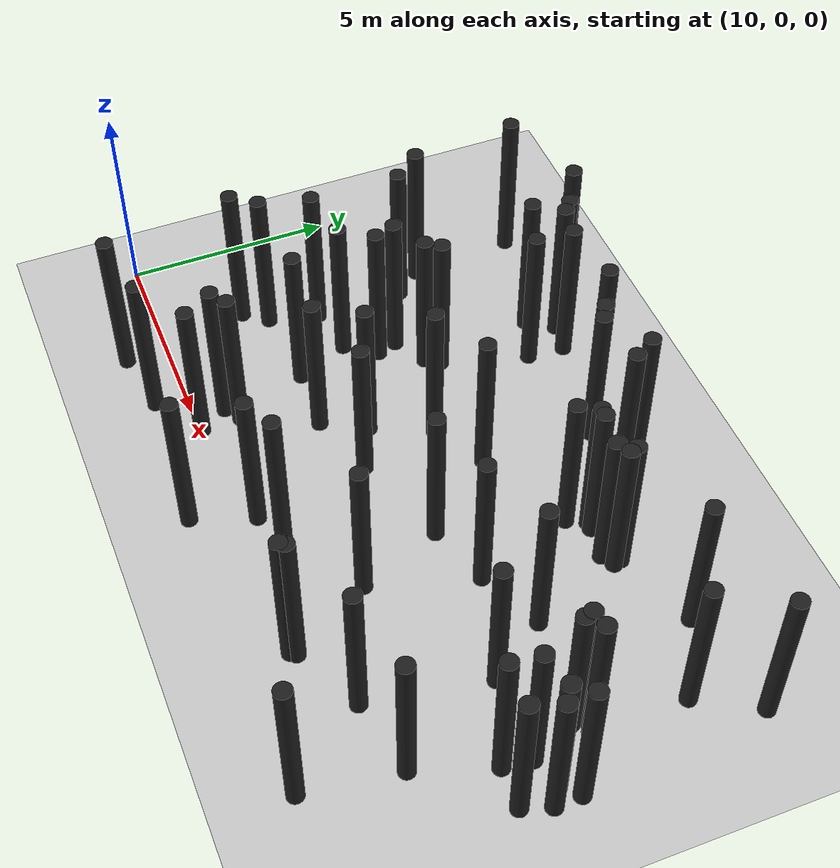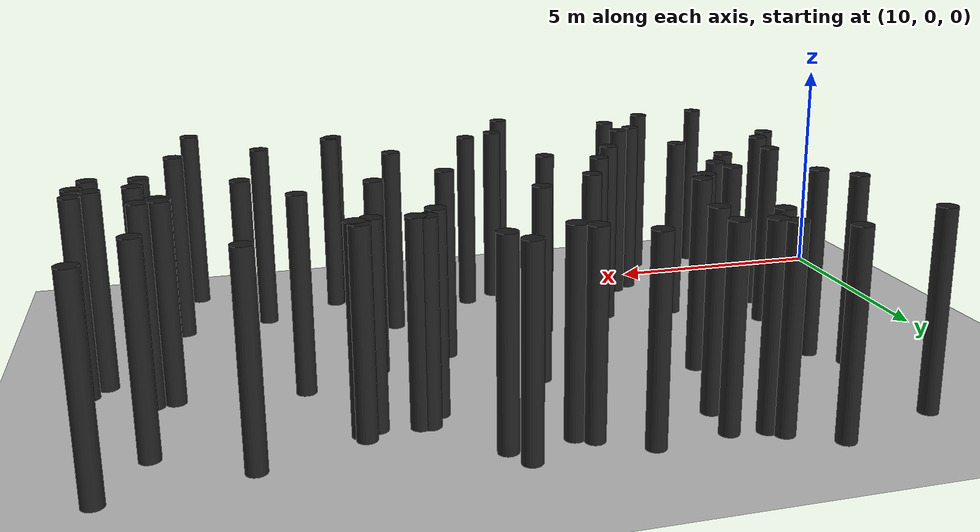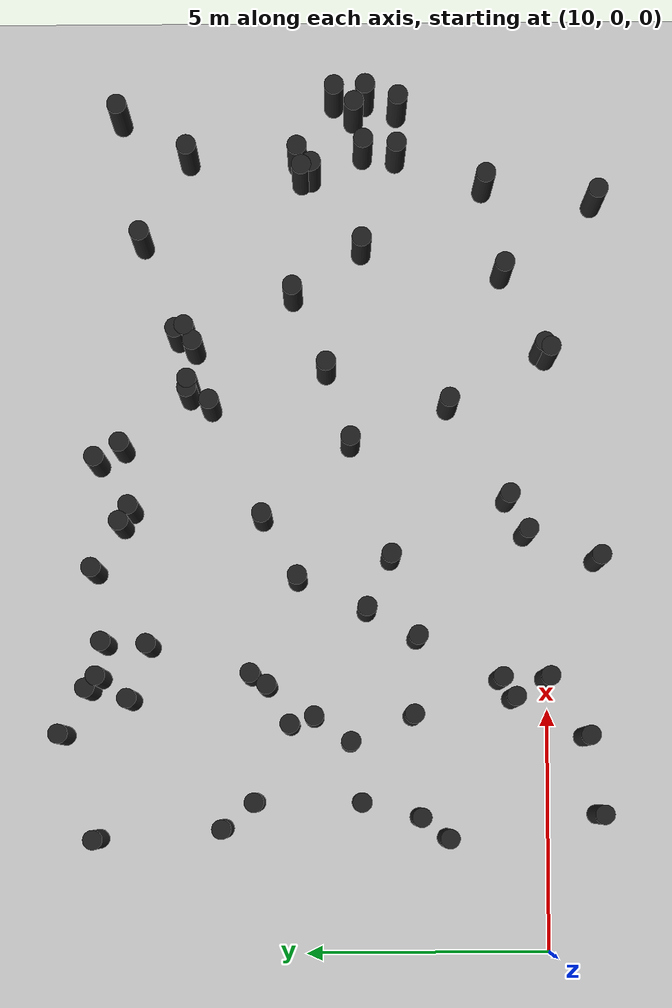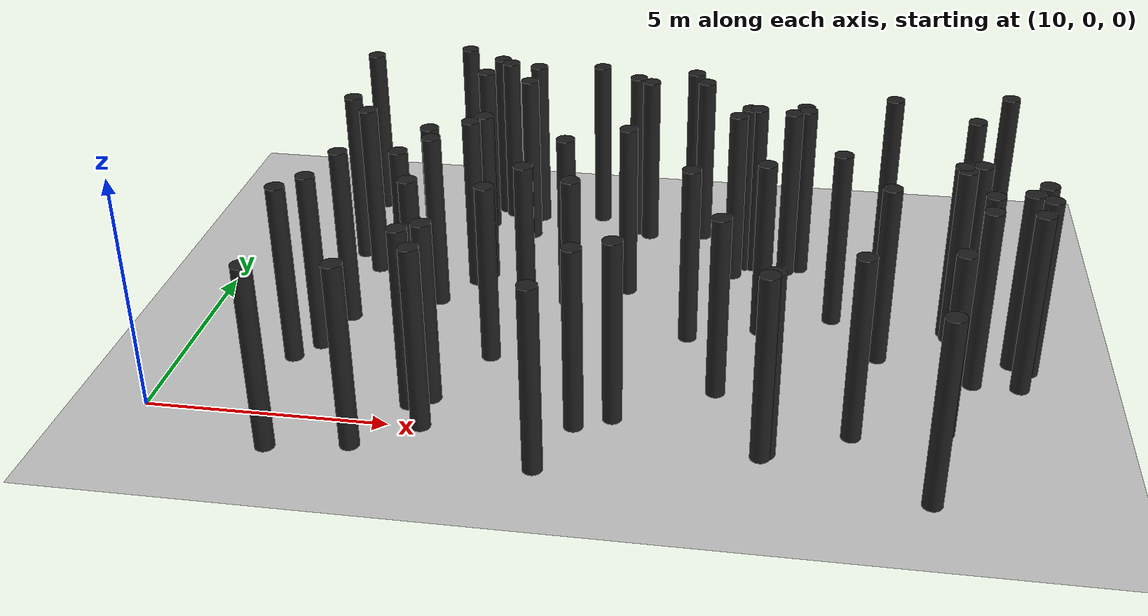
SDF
<sdf version="1.7">
 <world name="default">
  <model name="ground_plane">
   <static>1</static>
   <link name="link">
    <collision name="collision">
     <geometry><plane><normal>0 0 1</normal><size>200 200</size></plane></geometry>
     <surface><friction><ode><mu>100</mu><mu2>50</mu2></ode></friction></surface>
    </collision>
    <visual name="visual">
     <cast_shadows>0</cast_shadows>
     <geometry><plane><normal>0 0 1</normal><size>200 200</size></plane></geometry>
     <material>
      <script><uri>file://media/materials/scripts/gazebo.material</uri><name>Gazebo/Grey</name></script>
     </material>
    </visual>
   </link>
  </model>
  <model name="forest_clone_5_0">
   <pose>26.4891 3.75465 -0.00317 0 -0 0</pose>
   <static>1</static>
   <link name="cylinder::link">
    <inertial>
     <mass>1</mass>
     <inertia><ixx>0.083</ixx><ixy>0</ixy><ixz>0</ixz><iyy>0.083</iyy><iyz>0</iyz><izz>0.083</izz></inertia>
    </inertial>
    <collision name="collision">
     <geometry><cylinder><radius>0.2</radius><length>4</length></cylinder></geometry>
    </collision>
    <visual name="visual">
     <geometry><cylinder><radius>0.2</radius><length>4</length></cylinder></geometry>
     <material>
      <script><uri>file://media/materials/scripts/gazebo.material</uri><name>Gazebo/Black</name></script>
     </material>
    </visual>
    <pose>0 0 2 0 -0 0</pose>
   </link>
  </model>
  <model name="forest_clone_8_0">
   <pose>14.3487 4.0737 -0.00381 0 -0 0</pose>
   <static>1</static>
   <link name="cylinder::link">
    <inertial>
     <mass>1</mass>
     <inertia><ixx>0.083</ixx><ixy>0</ixy><ixz>0</ixz><iyy>0.083</iyy><iyz>0</iyz><izz>0.083</izz></inertia>
    </inertial>
    <collision name="collision">
     <geometry><cylinder><radius>0.2</radius><length>4</length></cylinder></geometry>
    </collision>
    <visual name="visual">
     <geometry><cylinder><radius>0.2</radius><length>4</length></cylinder></geometry>
     <material>
      <script><uri>file://media/materials/scripts/gazebo.material</uri><name>Gazebo/Black</name></script>
     </material>
    </visual>
    <pose>0 0 2 0 -0 0</pose>
   </link>
  </model>
  <model name="forest_clone_12_0">
   <pose>18.8097 8.72612 0.00448 0 -0 0</pose>
   <static>1</static>
   <link name="cylinder::link">
    <inertial>
     <mass>1</mass>
     <inertia><ixx>0.083</ixx><ixy>0</ixy><ixz>0</ixz><iyy>0.083</iyy><iyz>0</iyz><izz>0.083</izz></inertia>
    </inertial>
    <collision name="collision">
     <geometry><cylinder><radius>0.2</radius><length>4</length></cylinder></geometry>
    </collision>
    <visual name="visual">
     <geometry><cylinder><radius>0.2</radius><length>4</length></cylinder></geometry>
     <material>
      <script><uri>file://media/materials/scripts/gazebo.material</uri><name>Gazebo/Black</name></script>
     </material>
    </visual>
    <pose>0 0 2 0 -0 0</pose>
   </link>
  </model>
  <model name="forest_clone_14_0">
   <pose>21.9944 4.5321 0.00088 0 -0 0</pose>
   <static>1</static>
   <link name="cylinder::link">
    <inertial>
     <mass>1</mass>
     <inertia><ixx>0.083</ixx><ixy>0</ixy><ixz>0</ixz><iyy>0.083</iyy><iyz>0</iyz><izz>0.083</izz></inertia>
    </inertial>
    <collision name="collision">
     <geometry><cylinder><radius>0.2</radius><length>4</length></cylinder></geometry>
    </collision>
    <visual name="visual">
     <geometry><cylinder><radius>0.2</radius><length>4</length></cylinder></geometry>
     <material>
      <script><uri>file://media/materials/scripts/gazebo.material</uri><name>Gazebo/Black</name></script>
     </material>
    </visual>
    <pose>0 0 2 0 -0 0</pose>
   </link>
  </model>
  <model name="forest_clone_15_0">
   <pose>26.0231 4.81206 -0.0042 0 -0 0</pose>
   <static>1</static>
   <link name="cylinder::link">
    <inertial>
     <mass>1</mass>
     <inertia><ixx>0.083</ixx><ixy>0</ixy><ixz>0</ixz><iyy>0.083</iyy><iyz>0</iyz><izz>0.083</izz></inertia>
    </inertial>
    <collision name="collision">
     <geometry><cylinder><radius>0.2</radius><length>4</length></cylinder></geometry>
    </collision>
    <visual name="visual">
     <geometry><cylinder><radius>0.2</radius><length>4</length></cylinder></geometry>
     <material>
      <script><uri>file://media/materials/scripts/gazebo.material</uri><name>Gazebo/Black</name></script>
     </material>
    </visual>
    <pose>0 0 2 0 -0 0</pose>
   </link>
  </model>
  <model name="forest_clone_16_0">
   <pose>16.3894 9.09389 -0.00079 0 -0 0</pose>
   <static>1</static>
   <link name="cylinder::link">
    <inertial>
     <mass>1</mass>
     <inertia><ixx>0.083</ixx><ixy>0</ixy><ixz>0</ixz><iyy>0.083</iyy><iyz>0</iyz><izz>0.083</izz></inertia>
    </inertial>
    <collision name="collision">
     <geometry><cylinder><radius>0.2</radius><length>4</length></cylinder></geometry>
    </collision>
    <visual name="visual">
     <geometry><cylinder><radius>0.2</radius><length>4</length></cylinder></geometry>
     <material>
      <script><uri>file://media/materials/scripts/gazebo.material</uri><name>Gazebo/Black</name></script>
     </material>
    </visual>
    <pose>0 0 2 0 -0 0</pose>
   </link>
  </model>
  <model name="forest_clone_33_0">
   <pose>23.9728 0.91482 -0.00431 0 -0 0</pose>
   <static>1</static>
   <link name="cylinder::link">
    <inertial>
     <mass>1</mass>
     <inertia><ixx>0.083</ixx><ixy>0</ixy><ixz>0</ixz><iyy>0.083</iyy><iyz>0</iyz><izz>0.083</izz></inertia>
    </inertial>
    <collision name="collision">
     <geometry><cylinder><radius>0.2</radius><length>4</length></cylinder></geometry>
    </collision>
    <visual name="visual">
     <geometry><cylinder><radius>0.2</radius><length>4</length></cylinder></geometry>
     <material>
      <script><uri>file://media/materials/scripts/gazebo.material</uri><name>Gazebo/Black</name></script>
     </material>
    </visual>
    <pose>0 0 2 0 -0 0</pose>
   </link>
  </model>
  <model name="forest_clone_47_0">
   <pose>21.241 6.89741 -0.00021 0 -0 0</pose>
   <static>1</static>
   <link name="cylinder::link">
    <inertial>
     <mass>1</mass>
     <inertia><ixx>0.083</ixx><ixy>0</ixy><ixz>0</ixz><iyy>0.083</iyy><iyz>0</iyz><izz>0.083</izz></inertia>
    </inertial>
    <collision name="collision">
     <geometry><cylinder><radius>0.2</radius><length>4</length></cylinder></geometry>
    </collision>
    <visual name="visual">
     <geometry><cylinder><radius>0.2</radius><length>4</length></cylinder></geometry>
     <material>
      <script><uri>file://media/materials/scripts/gazebo.material</uri><name>Gazebo/Black</name></script>
     </material>
    </visual>
    <pose>0 0 2 0 -0 0</pose>
   </link>
  </model>
  <model name="forest_clone_51_0">
   <pose>15.6414 0.059573 0.0023 0 -0 0</pose>
   <static>1</static>
   <link name="cylinder::link">
    <inertial>
     <mass>1</mass>
     <inertia><ixx>0.083</ixx><ixy>0</ixy><ixz>0</ixz><iyy>0.083</iyy><iyz>0</iyz><izz>0.083</izz></inertia>
    </inertial>
    <collision name="collision">
     <geometry><cylinder><radius>0.2</radius><length>4</length></cylinder></geometry>
    </collision>
    <visual name="visual">
     <geometry><cylinder><radius>0.2</radius><length>4</length></cylinder></geometry>
     <material>
      <script><uri>file://media/materials/scripts/gazebo.material</uri><name>Gazebo/Black</name></script>
     </material>
    </visual>
    <pose>0 0 2 0 -0 0</pose>
   </link>
  </model>
  <model name="forest_clone_61_0">
   <pose>15.2404 8.57752 -0.00479 0 -0 0</pose>
   <static>1</static>
   <link name="cylinder::link">
    <inertial>
     <mass>1</mass>
     <inertia><ixx>0.083</ixx><ixy>0</ixy><ixz>0</ixz><iyy>0.083</iyy><iyz>0</iyz><izz>0.083</izz></inertia>
    </inertial>
    <collision name="collision">
     <geometry><cylinder><radius>0.2</radius><length>4</length></cylinder></geometry>
    </collision>
    <visual name="visual">
     <geometry><cylinder><radius>0.2</radius><length>4</length></cylinder></geometry>
     <material>
      <script><uri>file://media/materials/scripts/gazebo.material</uri><name>Gazebo/Black</name></script>
     </material>
    </visual>
    <pose>0 0 2 0 -0 0</pose>
   </link>
  </model>
  <model name="forest_clone_69_0">
   <pose>27.572 4.33717 0.00222 0 -0 0</pose>
   <static>1</static>
   <link name="cylinder::link">
    <inertial>
     <mass>1</mass>
     <inertia><ixx>0.083</ixx><ixy>0</ixy><ixz>0</ixz><iyy>0.083</iyy><iyz>0</iyz><izz>0.083</izz></inertia>
    </inertial>
    <collision name="collision">
     <geometry><cylinder><radius>0.2</radius><length>4</length></cylinder></geometry>
    </collision>
    <visual name="visual">
     <geometry><cylinder><radius>0.2</radius><length>4</length></cylinder></geometry>
     <material>
      <script><uri>file://media/materials/scripts/gazebo.material</uri><name>Gazebo/Black</name></script>
     </material>
    </visual>
    <pose>0 0 2 0 -0 0</pose>
   </link>
  </model>
  <model name="forest_clone_71_0">
   <pose>24.6457 8.28385 0.002 0 -0 0</pose>
   <static>1</static>
   <link name="cylinder::link">
    <inertial>
     <mass>1</mass>
     <inertia><ixx>0.083</ixx><ixy>0</ixy><ixz>0</ixz><iyy>0.083</iyy><iyz>0</iyz><izz>0.083</izz></inertia>
    </inertial>
    <collision name="collision">
     <geometry><cylinder><radius>0.2</radius><length>4</length></cylinder></geometry>
    </collision>
    <visual name="visual">
     <geometry><cylinder><radius>0.2</radius><length>4</length></cylinder></geometry>
     <material>
      <script><uri>file://media/materials/scripts/gazebo.material</uri><name>Gazebo/Black</name></script>
     </material>
    </visual>
    <pose>0 0 2 0 -0 0</pose>
   </link>
  </model>
  <model name="forest_clone_73_0">
   <pose>22.4354 7.22491 -0.0029 0 -0 0</pose>
   <static>1</static>
   <link name="cylinder::link">
    <inertial>
     <mass>1</mass>
     <inertia><ixx>0.083</ixx><ixy>0</ixy><ixz>0</ixz><iyy>0.083</iyy><iyz>0</iyz><izz>0.083</izz></inertia>
    </inertial>
    <collision name="collision">
     <geometry><cylinder><radius>0.2</radius><length>4</length></cylinder></geometry>
    </collision>
    <visual name="visual">
     <geometry><cylinder><radius>0.2</radius><length>4</length></cylinder></geometry>
     <material>
      <script><uri>file://media/materials/scripts/gazebo.material</uri><name>Gazebo/Black</name></script>
     </material>
    </visual>
    <pose>0 0 2 0 -0 0</pose>
   </link>
  </model>
  <model name="forest_clone_81_0">
   <pose>12.8404 -1.0048 -0.0041 0 -0 0</pose>
   <static>1</static>
   <link name="cylinder::link">
    <inertial>
     <mass>1</mass>
     <inertia><ixx>0.083</ixx><ixy>0</ixy><ixz>0</ixz><iyy>0.083</iyy><iyz>0</iyz><izz>0.083</izz></inertia>
    </inertial>
    <collision name="collision">
     <geometry><cylinder><radius>0.2</radius><length>4</length></cylinder></geometry>
    </collision>
    <visual name="visual">
     <geometry><cylinder><radius>0.2</radius><length>4</length></cylinder></geometry>
     <material>
      <script><uri>file://media/materials/scripts/gazebo.material</uri><name>Gazebo/Black</name></script>
     </material>
    </visual>
    <pose>0 0 2 0 -0 0</pose>
   </link>
  </model>
  <model name="forest_clone_97_0">
   <pose>15.4543 9.41918 0.00347 0 -0 0</pose>
   <static>1</static>
   <link name="cylinder::link">
    <inertial>
     <mass>1</mass>
     <inertia><ixx>0.083</ixx><ixy>0</ixy><ixz>0</ixz><iyy>0.083</iyy><iyz>0</iyz><izz>0.083</izz></inertia>
    </inertial>
    <collision name="collision">
     <geometry><cylinder><radius>0.2</radius><length>4</length></cylinder></geometry>
    </collision>
    <visual name="visual">
     <geometry><cylinder><radius>0.2</radius><length>4</length></cylinder></geometry>
     <material>
      <script><uri>file://media/materials/scripts/gazebo.material</uri><name>Gazebo/Black</name></script>
     </material>
    </visual>
    <pose>0 0 2 0 -0 0</pose>
   </link>
  </model>
  <model name="forest_clone_103_0">
   <pose>15.6292 1.01217 0.00343 0 -0 0</pose>
   <static>1</static>
   <link name="cylinder::link">
    <inertial>
     <mass>1</mass>
     <inertia><ixx>0.083</ixx><ixy>0</ixy><ixz>0</ixz><iyy>0.083</iyy><iyz>0</iyz><izz>0.083</izz></inertia>
    </inertial>
    <collision name="collision">
     <geometry><cylinder><radius>0.2</radius><length>4</length></cylinder></geometry>
    </collision>
    <visual name="visual">
     <geometry><cylinder><radius>0.2</radius><length>4</length></cylinder></geometry>
     <material>
      <script><uri>file://media/materials/scripts/gazebo.material</uri><name>Gazebo/Black</name></script>
     </material>
    </visual>
    <pose>0 0 2 0 -0 0</pose>
   </link>
  </model>
  <model name="forest_clone_108_0">
   <pose>15.7357 6.10091 -0.00061 0 -0 0</pose>
   <static>1</static>
   <link name="cylinder::link">
    <inertial>
     <mass>1</mass>
     <inertia><ixx>0.083</ixx><ixy>0</ixy><ixz>0</ixz><iyy>0.083</iyy><iyz>0</iyz><izz>0.083</izz></inertia>
    </inertial>
    <collision name="collision">
     <geometry><cylinder><radius>0.2</radius><length>4</length></cylinder></geometry>
    </collision>
    <visual name="visual">
     <geometry><cylinder><radius>0.2</radius><length>4</length></cylinder></geometry>
     <material>
      <script><uri>file://media/materials/scripts/gazebo.material</uri><name>Gazebo/Black</name></script>
     </material>
    </visual>
    <pose>0 0 2 0 -0 0</pose>
   </link>
  </model>
  <model name="forest_clone_111_0">
   <pose>27.2488 3.93785 -0.00348 0 -0 0</pose>
   <static>1</static>
   <link name="cylinder::link">
    <inertial>
     <mass>1</mass>
     <inertia><ixx>0.083</ixx><ixy>0</ixy><ixz>0</ixz><iyy>0.083</iyy><iyz>0</iyz><izz>0.083</izz></inertia>
    </inertial>
    <collision name="collision">
     <geometry><cylinder><radius>0.2</radius><length>4</length></cylinder></geometry>
    </collision>
    <visual name="visual">
     <geometry><cylinder><radius>0.2</radius><length>4</length></cylinder></geometry>
     <material>
      <script><uri>file://media/materials/scripts/gazebo.material</uri><name>Gazebo/Black</name></script>
     </material>
    </visual>
    <pose>0 0 2 0 -0 0</pose>
   </link>
  </model>
  <model name="forest_clone_113_0">
   <pose>27.3636 3.04822 0.00371 0 -0 0</pose>
   <static>1</static>
   <link name="cylinder::link">
    <inertial>
     <mass>1</mass>
     <inertia><ixx>0.083</ixx><ixy>0</ixy><ixz>0</ixz><iyy>0.083</iyy><iyz>0</iyz><izz>0.083</izz></inertia>
    </inertial>
    <collision name="collision">
     <geometry><cylinder><radius>0.2</radius><length>4</length></cylinder></geometry>
    </collision>
    <visual name="visual">
     <geometry><cylinder><radius>0.2</radius><length>4</length></cylinder></geometry>
     <material>
      <script><uri>file://media/materials/scripts/gazebo.material</uri><name>Gazebo/Black</name></script>
     </material>
    </visual>
    <pose>0 0 2 0 -0 0</pose>
   </link>
  </model>
  <model name="forest_clone_142_0">
   <pose>26.3809 7.32529 -0.002 0 -0 0</pose>
   <static>1</static>
   <link name="cylinder::link">
    <inertial>
     <mass>1</mass>
     <inertia><ixx>0.083</ixx><ixy>0</ixy><ixz>0</ixz><iyy>0.083</iyy><iyz>0</iyz><izz>0.083</izz></inertia>
    </inertial>
    <collision name="collision">
     <geometry><cylinder><radius>0.2</radius><length>4</length></cylinder></geometry>
    </collision>
    <visual name="visual">
     <geometry><cylinder><radius>0.2</radius><length>4</length></cylinder></geometry>
     <material>
      <script><uri>file://media/materials/scripts/gazebo.material</uri><name>Gazebo/Black</name></script>
     </material>
    </visual>
    <pose>0 0 2 0 -0 0</pose>
   </link>
  </model>
  <model name="forest_clone_147_0">
   <pose>16.4749 2.70727 0.00216 0 -0 0</pose>
   <static>1</static>
   <link name="cylinder::link">
    <inertial>
     <mass>1</mass>
     <inertia><ixx>0.083</ixx><ixy>0</ixy><ixz>0</ixz><iyy>0.083</iyy><iyz>0</iyz><izz>0.083</izz></inertia>
    </inertial>
    <collision name="collision">
     <geometry><cylinder><radius>0.2</radius><length>4</length></cylinder></geometry>
    </collision>
    <visual name="visual">
     <geometry><cylinder><radius>0.2</radius><length>4</length></cylinder></geometry>
     <material>
      <script><uri>file://media/materials/scripts/gazebo.material</uri><name>Gazebo/Black</name></script>
     </material>
    </visual>
    <pose>0 0 2 0 -0 0</pose>
   </link>
  </model>
  <model name="forest_clone_149_0">
   <pose>19.1265 8.5351 0.00365 0 -0 0</pose>
   <static>1</static>
   <link name="cylinder::link">
    <inertial>
     <mass>1</mass>
     <inertia><ixx>0.083</ixx><ixy>0</ixy><ixz>0</ixz><iyy>0.083</iyy><iyz>0</iyz><izz>0.083</izz></inertia>
    </inertial>
    <collision name="collision">
     <geometry><cylinder><radius>0.2</radius><length>4</length></cylinder></geometry>
    </collision>
    <visual name="visual">
     <geometry><cylinder><radius>0.2</radius><length>4</length></cylinder></geometry>
     <material>
      <script><uri>file://media/materials/scripts/gazebo.material</uri><name>Gazebo/Black</name></script>
     </material>
    </visual>
    <pose>0 0 2 0 -0 0</pose>
   </link>
  </model>
  <model name="forest_clone_3_clone_0_clone_0">
   <pose>22.2672 -0.001106 0.00023 0 -0 0</pose>
   <static>1</static>
   <link name="cylinder::link">
    <inertial>
     <mass>1</mass>
     <inertia><ixx>0.083</ixx><ixy>0</ixy><ixz>0</ixz><iyy>0.083</iyy><iyz>0</iyz><izz>0.083</izz></inertia>
    </inertial>
    <collision name="collision">
     <geometry><cylinder><radius>0.2</radius><length>4</length></cylinder></geometry>
    </collision>
    <visual name="visual">
     <geometry><cylinder><radius>0.2</radius><length>4</length></cylinder></geometry>
     <material>
      <script><uri>file://media/materials/scripts/gazebo.material</uri><name>Gazebo/Black</name></script>
     </material>
    </visual>
    <pose>0 0 2 0 -0 0</pose>
   </link>
  </model>
  <model name="forest_clone_7_1">
   <pose>13.1286 6.03364 0.00244 0 -0 0</pose>
   <static>1</static>
   <link name="cylinder::link">
    <inertial>
     <mass>1</mass>
     <inertia><ixx>0.083</ixx><ixy>0</ixy><ixz>0</ixz><iyy>0.083</iyy><iyz>0</iyz><izz>0.083</izz></inertia>
    </inertial>
    <collision name="collision">
     <geometry><cylinder><radius>0.2</radius><length>4</length></cylinder></geometry>
    </collision>
    <visual name="visual">
     <geometry><cylinder><radius>0.2</radius><length>4</length></cylinder></geometry>
     <material>
      <script><uri>file://media/materials/scripts/gazebo.material</uri><name>Gazebo/Black</name></script>
     </material>
    </visual>
    <pose>0 0 2 0 -0 0</pose>
   </link>
  </model>
  <model name="forest_clone_9_1">
   <pose>17.0556 3.73143 -0.00266 0 -0 0</pose>
   <static>1</static>
   <link name="cylinder::link">
    <inertial>
     <mass>1</mass>
     <inertia><ixx>0.083</ixx><ixy>0</ixy><ixz>0</ixz><iyy>0.083</iyy><iyz>0</iyz><izz>0.083</izz></inertia>
    </inertial>
    <collision name="collision">
     <geometry><cylinder><radius>0.2</radius><length>4</length></cylinder></geometry>
    </collision>
    <visual name="visual">
     <geometry><cylinder><radius>0.2</radius><length>4</length></cylinder></geometry>
     <material>
      <script><uri>file://media/materials/scripts/gazebo.material</uri><name>Gazebo/Black</name></script>
     </material>
    </visual>
    <pose>0 0 2 0 -0 0</pose>
   </link>
  </model>
  <model name="forest_clone_23_1">
   <pose>14.4431 -0.738575 0.001 0 -0 0</pose>
   <static>1</static>
   <link name="cylinder::link">
    <inertial>
     <mass>1</mass>
     <inertia><ixx>0.083</ixx><ixy>0</ixy><ixz>0</ixz><iyy>0.083</iyy><iyz>0</iyz><izz>0.083</izz></inertia>
    </inertial>
    <collision name="collision">
     <geometry><cylinder><radius>0.2</radius><length>4</length></cylinder></geometry>
    </collision>
    <visual name="visual">
     <geometry><cylinder><radius>0.2</radius><length>4</length></cylinder></geometry>
     <material>
      <script><uri>file://media/materials/scripts/gazebo.material</uri><name>Gazebo/Black</name></script>
     </material>
    </visual>
    <pose>0 0 2 0 -0 0</pose>
   </link>
  </model>
  <model name="forest_clone_26_1">
   <pose>12.8066 2.66193 -0.00315 0 -0 0</pose>
   <static>1</static>
   <link name="cylinder::link">
    <inertial>
     <mass>1</mass>
     <inertia><ixx>0.083</ixx><ixy>0</ixy><ixz>0</ixz><iyy>0.083</iyy><iyz>0</iyz><izz>0.083</izz></inertia>
    </inertial>
    <collision name="collision">
     <geometry><cylinder><radius>0.2</radius><length>4</length></cylinder></geometry>
    </collision>
    <visual name="visual">
     <geometry><cylinder><radius>0.2</radius><length>4</length></cylinder></geometry>
     <material>
      <script><uri>file://media/materials/scripts/gazebo.material</uri><name>Gazebo/Black</name></script>
     </material>
    </visual>
    <pose>0 0 2 0 -0 0</pose>
   </link>
  </model>
  <model name="forest_clone_29_1">
   <pose>20.3928 8.70571 -0.00321 0 -0 0</pose>
   <static>1</static>
   <link name="cylinder::link">
    <inertial>
     <mass>1</mass>
     <inertia><ixx>0.083</ixx><ixy>0</ixy><ixz>0</ixz><iyy>0.083</iyy><iyz>0</iyz><izz>0.083</izz></inertia>
    </inertial>
    <collision name="collision">
     <geometry><cylinder><radius>0.2</radius><length>4</length></cylinder></geometry>
    </collision>
    <visual name="visual">
     <geometry><cylinder><radius>0.2</radius><length>4</length></cylinder></geometry>
     <material>
      <script><uri>file://media/materials/scripts/gazebo.material</uri><name>Gazebo/Black</name></script>
     </material>
    </visual>
    <pose>0 0 2 0 -0 0</pose>
   </link>
  </model>
  <model name="forest_clone_36_1">
   <pose>12.3751 2.0999 0.00019 0 -0 0</pose>
   <static>1</static>
   <link name="cylinder::link">
    <inertial>
     <mass>1</mass>
     <inertia><ixx>0.083</ixx><ixy>0</ixy><ixz>0</ixz><iyy>0.083</iyy><iyz>0</iyz><izz>0.083</izz></inertia>
    </inertial>
    <collision name="collision">
     <geometry><cylinder><radius>0.2</radius><length>4</length></cylinder></geometry>
    </collision>
    <visual name="visual">
     <geometry><cylinder><radius>0.2</radius><length>4</length></cylinder></geometry>
     <material>
      <script><uri>file://media/materials/scripts/gazebo.material</uri><name>Gazebo/Black</name></script>
     </material>
    </visual>
    <pose>0 0 2 0 -0 0</pose>
   </link>
  </model>
  <model name="forest_clone_39_1">
   <pose>25.965 5.00772 -0.00318 0 -0 0</pose>
   <static>1</static>
   <link name="cylinder::link">
    <inertial>
     <mass>1</mass>
     <inertia><ixx>0.083</ixx><ixy>0</ixy><ixz>0</ixz><iyy>0.083</iyy><iyz>0</iyz><izz>0.083</izz></inertia>
    </inertial>
    <collision name="collision">
     <geometry><cylinder><radius>0.2</radius><length>4</length></cylinder></geometry>
    </collision>
    <visual name="visual">
     <geometry><cylinder><radius>0.2</radius><length>4</length></cylinder></geometry>
     <material>
      <script><uri>file://media/materials/scripts/gazebo.material</uri><name>Gazebo/Black</name></script>
     </material>
    </visual>
    <pose>0 0 2 0 -0 0</pose>
   </link>
  </model>
  <model name="forest_clone_46_1">
   <pose>27.5925 3.70947 0.00123 0 -0 0</pose>
   <static>1</static>
   <link name="cylinder::link">
    <inertial>
     <mass>1</mass>
     <inertia><ixx>0.083</ixx><ixy>0</ixy><ixz>0</ixz><iyy>0.083</iyy><iyz>0</iyz><izz>0.083</izz></inertia>
    </inertial>
    <collision name="collision">
     <geometry><cylinder><radius>0.2</radius><length>4</length></cylinder></geometry>
    </collision>
    <visual name="visual">
     <geometry><cylinder><radius>0.2</radius><length>4</length></cylinder></geometry>
     <material>
      <script><uri>file://media/materials/scripts/gazebo.material</uri><name>Gazebo/Black</name></script>
     </material>
    </visual>
    <pose>0 0 2 0 -0 0</pose>
   </link>
  </model>
  <model name="forest_clone_47_1">
   <pose>19.3144 0.844253 -8e-05 0 -0 0</pose>
   <static>1</static>
   <link name="cylinder::link">
    <inertial>
     <mass>1</mass>
     <inertia><ixx>0.083</ixx><ixy>0</ixy><ixz>0</ixz><iyy>0.083</iyy><iyz>0</iyz><izz>0.083</izz></inertia>
    </inertial>
    <collision name="collision">
     <geometry><cylinder><radius>0.2</radius><length>4</length></cylinder></geometry>
    </collision>
    <visual name="visual">
     <geometry><cylinder><radius>0.2</radius><length>4</length></cylinder></geometry>
     <material>
      <script><uri>file://media/materials/scripts/gazebo.material</uri><name>Gazebo/Black</name></script>
     </material>
    </visual>
    <pose>0 0 2 0 -0 0</pose>
   </link>
  </model>
  <model name="forest_clone_56_1">
   <pose>26.4067 3.07962 -0.00364 0 -0 0</pose>
   <static>1</static>
   <link name="cylinder::link">
    <inertial>
     <mass>1</mass>
     <inertia><ixx>0.083</ixx><ixy>0</ixy><ixz>0</ixz><iyy>0.083</iyy><iyz>0</iyz><izz>0.083</izz></inertia>
    </inertial>
    <collision name="collision">
     <geometry><cylinder><radius>0.2</radius><length>4</length></cylinder></geometry>
    </collision>
    <visual name="visual">
     <geometry><cylinder><radius>0.2</radius><length>4</length></cylinder></geometry>
     <material>
      <script><uri>file://media/materials/scripts/gazebo.material</uri><name>Gazebo/Black</name></script>
     </material>
    </visual>
    <pose>0 0 2 0 -0 0</pose>
   </link>
  </model>
  <model name="forest_clone_80_1">
   <pose>22.741 7.39116 0.00381 0 -0 0</pose>
   <static>1</static>
   <link name="cylinder::link">
    <inertial>
     <mass>1</mass>
     <inertia><ixx>0.083</ixx><ixy>0</ixy><ixz>0</ixz><iyy>0.083</iyy><iyz>0</iyz><izz>0.083</izz></inertia>
    </inertial>
    <collision name="collision">
     <geometry><cylinder><radius>0.2</radius><length>4</length></cylinder></geometry>
    </collision>
    <visual name="visual">
     <geometry><cylinder><radius>0.2</radius><length>4</length></cylinder></geometry>
     <material>
      <script><uri>file://media/materials/scripts/gazebo.material</uri><name>Gazebo/Black</name></script>
     </material>
    </visual>
    <pose>0 0 2 0 -0 0</pose>
   </link>
  </model>
  <model name="forest_clone_86_1">
   <pose>25.4493 -0.975431 -0.00283 0 -0 0</pose>
   <static>1</static>
   <link name="cylinder::link">
    <inertial>
     <mass>1</mass>
     <inertia><ixx>0.083</ixx><ixy>0</ixy><ixz>0</ixz><iyy>0.083</iyy><iyz>0</iyz><izz>0.083</izz></inertia>
    </inertial>
    <collision name="collision">
     <geometry><cylinder><radius>0.2</radius><length>4</length></cylinder></geometry>
    </collision>
    <visual name="visual">
     <geometry><cylinder><radius>0.2</radius><length>4</length></cylinder></geometry>
     <material>
      <script><uri>file://media/materials/scripts/gazebo.material</uri><name>Gazebo/Black</name></script>
     </material>
    </visual>
    <pose>0 0 2 0 -0 0</pose>
   </link>
  </model>
  <model name="forest_clone_110_1">
   <pose>13.117 3.85743 0.00105 0 -0 0</pose>
   <static>1</static>
   <link name="cylinder::link">
    <inertial>
     <mass>1</mass>
     <inertia><ixx>0.083</ixx><ixy>0</ixy><ixz>0</ixz><iyy>0.083</iyy><iyz>0</iyz><izz>0.083</izz></inertia>
    </inertial>
    <collision name="collision">
     <geometry><cylinder><radius>0.2</radius><length>4</length></cylinder></geometry>
    </collision>
    <visual name="visual">
     <geometry><cylinder><radius>0.2</radius><length>4</length></cylinder></geometry>
     <material>
      <script><uri>file://media/materials/scripts/gazebo.material</uri><name>Gazebo/Black</name></script>
     </material>
    </visual>
    <pose>0 0 2 0 -0 0</pose>
   </link>
  </model>
  <model name="forest_clone_112_1">
   <pose>18.9483 5.85113 0.00405 0 -0 0</pose>
   <static>1</static>
   <link name="cylinder::link">
    <inertial>
     <mass>1</mass>
     <inertia><ixx>0.083</ixx><ixy>0</ixy><ixz>0</ixz><iyy>0.083</iyy><iyz>0</iyz><izz>0.083</izz></inertia>
    </inertial>
    <collision name="collision">
     <geometry><cylinder><radius>0.2</radius><length>4</length></cylinder></geometry>
    </collision>
    <visual name="visual">
     <geometry><cylinder><radius>0.2</radius><length>4</length></cylinder></geometry>
     <material>
      <script><uri>file://media/materials/scripts/gazebo.material</uri><name>Gazebo/Black</name></script>
     </material>
    </visual>
    <pose>0 0 2 0 -0 0</pose>
   </link>
  </model>
  <model name="forest_clone_114_1">
   <pose>20.1033 9.21491 0.00061 0 -0 0</pose>
   <static>1</static>
   <link name="cylinder::link">
    <inertial>
     <mass>1</mass>
     <inertia><ixx>0.083</ixx><ixy>0</ixy><ixz>0</ixz><iyy>0.083</iyy><iyz>0</iyz><izz>0.083</izz></inertia>
    </inertial>
    <collision name="collision">
     <geometry><cylinder><radius>0.2</radius><length>4</length></cylinder></geometry>
    </collision>
    <visual name="visual">
     <geometry><cylinder><radius>0.2</radius><length>4</length></cylinder></geometry>
     <material>
      <script><uri>file://media/materials/scripts/gazebo.material</uri><name>Gazebo/Black</name></script>
     </material>
    </visual>
    <pose>0 0 2 0 -0 0</pose>
   </link>
  </model>
  <model name="forest_clone_140_1">
   <pose>18.6022 0.473525 0.00405 0 -0 0</pose>
   <static>1</static>
   <link name="cylinder::link">
    <inertial>
     <mass>1</mass>
     <inertia><ixx>0.083</ixx><ixy>0</ixy><ixz>0</ixz><iyy>0.083</iyy><iyz>0</iyz><izz>0.083</izz></inertia>
    </inertial>
    <collision name="collision">
     <geometry><cylinder><radius>0.2</radius><length>4</length></cylinder></geometry>
    </collision>
    <visual name="visual">
     <geometry><cylinder><radius>0.2</radius><length>4</length></cylinder></geometry>
     <material>
      <script><uri>file://media/materials/scripts/gazebo.material</uri><name>Gazebo/Black</name></script>
     </material>
    </visual>
    <pose>0 0 2 0 -0 0</pose>
   </link>
  </model>
  <model name="forest_clone_143_1">
   <pose>16.3396 8.18486 0.00396 0 -0 0</pose>
   <static>1</static>
   <link name="cylinder::link">
    <inertial>
     <mass>1</mass>
     <inertia><ixx>0.083</ixx><ixy>0</ixy><ixz>0</ixz><iyy>0.083</iyy><iyz>0</iyz><izz>0.083</izz></inertia>
    </inertial>
    <collision name="collision">
     <geometry><cylinder><radius>0.2</radius><length>4</length></cylinder></geometry>
    </collision>
    <visual name="visual">
     <geometry><cylinder><radius>0.2</radius><length>4</length></cylinder></geometry>
     <material>
      <script><uri>file://media/materials/scripts/gazebo.material</uri><name>Gazebo/Black</name></script>
     </material>
    </visual>
    <pose>0 0 2 0 -0 0</pose>
   </link>
  </model>
  <model name="forest_clone_0_2">
   <pose>14.7064 5.308 -0.00012 0 -0 0</pose>
   <static>1</static>
   <link name="cylinder::link">
    <inertial>
     <mass>1</mass>
     <inertia><ixx>0.083</ixx><ixy>0</ixy><ixz>0</ixz><iyy>0.083</iyy><iyz>0</iyz><izz>0.083</izz></inertia>
    </inertial>
    <collision name="collision">
     <geometry><cylinder><radius>0.2</radius><length>4</length></cylinder></geometry>
    </collision>
    <visual name="visual">
     <geometry><cylinder><radius>0.2</radius><length>4</length></cylinder></geometry>
     <material>
      <script><uri>file://media/materials/scripts/gazebo.material</uri><name>Gazebo/Black</name></script>
     </material>
    </visual>
    <pose>0 0 2 0 -0 0</pose>
   </link>
  </model>
  <model name="forest_clone_6_2">
   <pose>21.2477 2.04523 0.00206 0 -0 0</pose>
   <static>1</static>
   <link name="cylinder::link">
    <inertial>
     <mass>1</mass>
     <inertia><ixx>0.083</ixx><ixy>0</ixy><ixz>0</ixz><iyy>0.083</iyy><iyz>0</iyz><izz>0.083</izz></inertia>
    </inertial>
    <collision name="collision">
     <geometry><cylinder><radius>0.2</radius><length>4</length></cylinder></geometry>
    </collision>
    <visual name="visual">
     <geometry><cylinder><radius>0.2</radius><length>4</length></cylinder></geometry>
     <material>
      <script><uri>file://media/materials/scripts/gazebo.material</uri><name>Gazebo/Black</name></script>
     </material>
    </visual>
    <pose>0 0 2 0 -0 0</pose>
   </link>
  </model>
  <model name="forest_clone_26_2">
   <pose>12.5947 6.68831 0.0017 0 -0 0</pose>
   <static>1</static>
   <link name="cylinder::link">
    <inertial>
     <mass>1</mass>
     <inertia><ixx>0.083</ixx><ixy>0</ixy><ixz>0</ixz><iyy>0.083</iyy><iyz>0</iyz><izz>0.083</izz></inertia>
    </inertial>
    <collision name="collision">
     <geometry><cylinder><radius>0.2</radius><length>4</length></cylinder></geometry>
    </collision>
    <visual name="visual">
     <geometry><cylinder><radius>0.2</radius><length>4</length></cylinder></geometry>
     <material>
      <script><uri>file://media/materials/scripts/gazebo.material</uri><name>Gazebo/Black</name></script>
     </material>
    </visual>
    <pose>0 0 2 0 -0 0</pose>
   </link>
  </model>
  <model name="forest_clone_31_2">
   <pose>21.4855 7.34301 -0.0035 0 -0 0</pose>
   <static>1</static>
   <link name="cylinder::link">
    <inertial>
     <mass>1</mass>
     <inertia><ixx>0.083</ixx><ixy>0</ixy><ixz>0</ixz><iyy>0.083</iyy><iyz>0</iyz><izz>0.083</izz></inertia>
    </inertial>
    <collision name="collision">
     <geometry><cylinder><radius>0.2</radius><length>4</length></cylinder></geometry>
    </collision>
    <visual name="visual">
     <geometry><cylinder><radius>0.2</radius><length>4</length></cylinder></geometry>
     <material>
      <script><uri>file://media/materials/scripts/gazebo.material</uri><name>Gazebo/Black</name></script>
     </material>
    </visual>
    <pose>0 0 2 0 -0 0</pose>
   </link>
  </model>
  <model name="forest_clone_32_2">
   <pose>26.3544 5.09593 0.0031 0 -0 0</pose>
   <static>1</static>
   <link name="cylinder::link">
    <inertial>
     <mass>1</mass>
     <inertia><ixx>0.083</ixx><ixy>0</ixy><ixz>0</ixz><iyy>0.083</iyy><iyz>0</iyz><izz>0.083</izz></inertia>
    </inertial>
    <collision name="collision">
     <geometry><cylinder><radius>0.2</radius><length>4</length></cylinder></geometry>
    </collision>
    <visual name="visual">
     <geometry><cylinder><radius>0.2</radius><length>4</length></cylinder></geometry>
     <material>
      <script><uri>file://media/materials/scripts/gazebo.material</uri><name>Gazebo/Black</name></script>
     </material>
    </visual>
    <pose>0 0 2 0 -0 0</pose>
   </link>
  </model>
  <model name="forest_clone_36_2">
   <pose>12.4 9.27181 -0.00347 0 -0 0</pose>
   <static>1</static>
   <link name="cylinder::link">
    <inertial>
     <mass>1</mass>
     <inertia><ixx>0.083</ixx><ixy>0</ixy><ixz>0</ixz><iyy>0.083</iyy><iyz>0</iyz><izz>0.083</izz></inertia>
    </inertial>
    <collision name="collision">
     <geometry><cylinder><radius>0.2</radius><length>4</length></cylinder></geometry>
    </collision>
    <visual name="visual">
     <geometry><cylinder><radius>0.2</radius><length>4</length></cylinder></geometry>
     <material>
      <script><uri>file://media/materials/scripts/gazebo.material</uri><name>Gazebo/Black</name></script>
     </material>
    </visual>
    <pose>0 0 2 0 -0 0</pose>
   </link>
  </model>
  <model name="forest_clone_44_2">
   <pose>22.3583 0.12106 -0.00278 0 -0 0</pose>
   <static>1</static>
   <link name="cylinder::link">
    <inertial>
     <mass>1</mass>
     <inertia><ixx>0.083</ixx><ixy>0</ixy><ixz>0</ixz><iyy>0.083</iyy><iyz>0</iyz><izz>0.083</izz></inertia>
    </inertial>
    <collision name="collision">
     <geometry><cylinder><radius>0.2</radius><length>4</length></cylinder></geometry>
    </collision>
    <visual name="visual">
     <geometry><cylinder><radius>0.2</radius><length>4</length></cylinder></geometry>
     <material>
      <script><uri>file://media/materials/scripts/gazebo.material</uri><name>Gazebo/Black</name></script>
     </material>
    </visual>
    <pose>0 0 2 0 -0 0</pose>
   </link>
  </model>
  <model name="forest_clone_54_2">
   <pose>18.0663 -0.983329 -0.00101 0 -0 0</pose>
   <static>1</static>
   <link name="cylinder::link">
    <inertial>
     <mass>1</mass>
     <inertia><ixx>0.083</ixx><ixy>0</ixy><ixz>0</ixz><iyy>0.083</iyy><iyz>0</iyz><izz>0.083</izz></inertia>
    </inertial>
    <collision name="collision">
     <geometry><cylinder><radius>0.2</radius><length>4</length></cylinder></geometry>
    </collision>
    <visual name="visual">
     <geometry><cylinder><radius>0.2</radius><length>4</length></cylinder></geometry>
     <material>
      <script><uri>file://media/materials/scripts/gazebo.material</uri><name>Gazebo/Black</name></script>
     </material>
    </visual>
    <pose>0 0 2 0 -0 0</pose>
   </link>
  </model>
  <model name="forest_clone_55_2">
   <pose>14.5354 9.95933 0.00045 0 -0 0</pose>
   <static>1</static>
   <link name="cylinder::link">
    <inertial>
     <mass>1</mass>
     <inertia><ixx>0.083</ixx><ixy>0</ixy><ixz>0</ixz><iyy>0.083</iyy><iyz>0</iyz><izz>0.083</izz></inertia>
    </inertial>
    <collision name="collision">
     <geometry><cylinder><radius>0.2</radius><length>4</length></cylinder></geometry>
    </collision>
    <visual name="visual">
     <geometry><cylinder><radius>0.2</radius><length>4</length></cylinder></geometry>
     <material>
      <script><uri>file://media/materials/scripts/gazebo.material</uri><name>Gazebo/Black</name></script>
     </material>
    </visual>
    <pose>0 0 2 0 -0 0</pose>
   </link>
  </model>
  <model name="forest_clone_64_2">
   <pose>14.8653 4.81617 -0.00287 0 -0 0</pose>
   <static>1</static>
   <link name="cylinder::link">
    <inertial>
     <mass>1</mass>
     <inertia><ixx>0.083</ixx><ixy>0</ixy><ixz>0</ixz><iyy>0.083</iyy><iyz>0</iyz><izz>0.083</izz></inertia>
    </inertial>
    <collision name="collision">
     <geometry><cylinder><radius>0.2</radius><length>4</length></cylinder></geometry>
    </collision>
    <visual name="visual">
     <geometry><cylinder><radius>0.2</radius><length>4</length></cylinder></geometry>
     <material>
      <script><uri>file://media/materials/scripts/gazebo.material</uri><name>Gazebo/Black</name></script>
     </material>
    </visual>
    <pose>0 0 2 0 -0 0</pose>
   </link>
  </model>
  <model name="forest_clone_69_2">
   <pose>25.7766 1.28407 0.00276 0 -0 0</pose>
   <static>1</static>
   <link name="cylinder::link">
    <inertial>
     <mass>1</mass>
     <inertia><ixx>0.083</ixx><ixy>0</ixy><ixz>0</ixz><iyy>0.083</iyy><iyz>0</iyz><izz>0.083</izz></inertia>
    </inertial>
    <collision name="collision">
     <geometry><cylinder><radius>0.2</radius><length>4</length></cylinder></geometry>
    </collision>
    <visual name="visual">
     <geometry><cylinder><radius>0.2</radius><length>4</length></cylinder></geometry>
     <material>
      <script><uri>file://media/materials/scripts/gazebo.material</uri><name>Gazebo/Black</name></script>
     </material>
    </visual>
    <pose>0 0 2 0 -0 0</pose>
   </link>
  </model>
  <model name="forest_clone_73_2">
   <pose>21.6687 7.33875 0.00248 0 -0 0</pose>
   <static>1</static>
   <link name="cylinder::link">
    <inertial>
     <mass>1</mass>
     <inertia><ixx>0.083</ixx><ixy>0</ixy><ixz>0</ixz><iyy>0.083</iyy><iyz>0</iyz><izz>0.083</izz></inertia>
    </inertial>
    <collision name="collision">
     <geometry><cylinder><radius>0.2</radius><length>4</length></cylinder></geometry>
    </collision>
    <visual name="visual">
     <geometry><cylinder><radius>0.2</radius><length>4</length></cylinder></geometry>
     <material>
      <script><uri>file://media/materials/scripts/gazebo.material</uri><name>Gazebo/Black</name></script>
     </material>
    </visual>
    <pose>0 0 2 0 -0 0</pose>
   </link>
  </model>
  <model name="forest_clone_77_2">
   <pose>15.2315 0.74964 -0.00413 0 -0 0</pose>
   <static>1</static>
   <link name="cylinder::link">
    <inertial>
     <mass>1</mass>
     <inertia><ixx>0.083</ixx><ixy>0</ixy><ixz>0</ixz><iyy>0.083</iyy><iyz>0</iyz><izz>0.083</izz></inertia>
    </inertial>
    <collision name="collision">
     <geometry><cylinder><radius>0.2</radius><length>4</length></cylinder></geometry>
    </collision>
    <visual name="visual">
     <geometry><cylinder><radius>0.2</radius><length>4</length></cylinder></geometry>
     <material>
      <script><uri>file://media/materials/scripts/gazebo.material</uri><name>Gazebo/Black</name></script>
     </material>
    </visual>
    <pose>0 0 2 0 -0 0</pose>
   </link>
  </model>
  <model name="forest_clone_79_2">
   <pose>14.8906 2.79469 -0.00399 0 -0 0</pose>
   <static>1</static>
   <link name="cylinder::link">
    <inertial>
     <mass>1</mass>
     <inertia><ixx>0.083</ixx><ixy>0</ixy><ixz>0</ixz><iyy>0.083</iyy><iyz>0</iyz><izz>0.083</izz></inertia>
    </inertial>
    <collision name="collision">
     <geometry><cylinder><radius>0.2</radius><length>4</length></cylinder></geometry>
    </collision>
    <visual name="visual">
     <geometry><cylinder><radius>0.2</radius><length>4</length></cylinder></geometry>
     <material>
      <script><uri>file://media/materials/scripts/gazebo.material</uri><name>Gazebo/Black</name></script>
     </material>
    </visual>
    <pose>0 0 2 0 -0 0</pose>
   </link>
  </model>
  <model name="forest_clone_83_2">
   <pose>17.8732 9.28314 0.00354 0 -0 0</pose>
   <static>1</static>
   <link name="cylinder::link">
    <inertial>
     <mass>1</mass>
     <inertia><ixx>0.083</ixx><ixy>0</ixy><ixz>0</ixz><iyy>0.083</iyy><iyz>0</iyz><izz>0.083</izz></inertia>
    </inertial>
    <collision name="collision">
     <geometry><cylinder><radius>0.2</radius><length>4</length></cylinder></geometry>
    </collision>
    <visual name="visual">
     <geometry><cylinder><radius>0.2</radius><length>4</length></cylinder></geometry>
     <material>
      <script><uri>file://media/materials/scripts/gazebo.material</uri><name>Gazebo/Black</name></script>
     </material>
    </visual>
    <pose>0 0 2 0 -0 0</pose>
   </link>
  </model>
  <model name="forest_clone_98_2">
   <pose>24.4945 3.7961 -0.00391 0 -0 0</pose>
   <static>1</static>
   <link name="cylinder::link">
    <inertial>
     <mass>1</mass>
     <inertia><ixx>0.083</ixx><ixy>0</ixy><ixz>0</ixz><iyy>0.083</iyy><iyz>0</iyz><izz>0.083</izz></inertia>
    </inertial>
    <collision name="collision">
     <geometry><cylinder><radius>0.2</radius><length>4</length></cylinder></geometry>
    </collision>
    <visual name="visual">
     <geometry><cylinder><radius>0.2</radius><length>4</length></cylinder></geometry>
     <material>
      <script><uri>file://media/materials/scripts/gazebo.material</uri><name>Gazebo/Black</name></script>
     </material>
    </visual>
    <pose>0 0 2 0 -0 0</pose>
   </link>
  </model>
  <model name="forest_clone_107_2">
   <pose>18.1204 3.23657 -0.0034 0 -0 0</pose>
   <static>1</static>
   <link name="cylinder::link">
    <inertial>
     <mass>1</mass>
     <inertia><ixx>0.083</ixx><ixy>0</ixy><ixz>0</ixz><iyy>0.083</iyy><iyz>0</iyz><izz>0.083</izz></inertia>
    </inertial>
    <collision name="collision">
     <geometry><cylinder><radius>0.2</radius><length>4</length></cylinder></geometry>
    </collision>
    <visual name="visual">
     <geometry><cylinder><radius>0.2</radius><length>4</length></cylinder></geometry>
     <material>
      <script><uri>file://media/materials/scripts/gazebo.material</uri><name>Gazebo/Black</name></script>
     </material>
    </visual>
    <pose>0 0 2 0 -0 0</pose>
   </link>
  </model>
  <model name="forest_clone_110_2">
   <pose>15.6973 9.20527 0.00488 0 -0 0</pose>
   <static>1</static>
   <link name="cylinder::link">
    <inertial>
     <mass>1</mass>
     <inertia><ixx>0.083</ixx><ixy>0</ixy><ixz>0</ixz><iyy>0.083</iyy><iyz>0</iyz><izz>0.083</izz></inertia>
    </inertial>
    <collision name="collision">
     <geometry><cylinder><radius>0.2</radius><length>4</length></cylinder></geometry>
    </collision>
    <visual name="visual">
     <geometry><cylinder><radius>0.2</radius><length>4</length></cylinder></geometry>
     <material>
      <script><uri>file://media/materials/scripts/gazebo.material</uri><name>Gazebo/Black</name></script>
     </material>
    </visual>
    <pose>0 0 2 0 -0 0</pose>
   </link>
  </model>
  <model name="forest_clone_117_2">
   <pose>15.5039 5.76986 6e-05 0 -0 0</pose>
   <static>1</static>
   <link name="cylinder::link">
    <inertial>
     <mass>1</mass>
     <inertia><ixx>0.083</ixx><ixy>0</ixy><ixz>0</ixz><iyy>0.083</iyy><iyz>0</iyz><izz>0.083</izz></inertia>
    </inertial>
    <collision name="collision">
     <geometry><cylinder><radius>0.2</radius><length>4</length></cylinder></geometry>
    </collision>
    <visual name="visual">
     <geometry><cylinder><radius>0.2</radius><length>4</length></cylinder></geometry>
     <material>
      <script><uri>file://media/materials/scripts/gazebo.material</uri><name>Gazebo/Black</name></script>
     </material>
    </visual>
    <pose>0 0 2 0 -0 0</pose>
   </link>
  </model>
  <model name="forest_clone_123_2">
   <pose>27.2069 8.72187 0.00205 0 -0 0</pose>
   <static>1</static>
   <link name="cylinder::link">
    <inertial>
     <mass>1</mass>
     <inertia><ixx>0.083</ixx><ixy>0</ixy><ixz>0</ixz><iyy>0.083</iyy><iyz>0</iyz><izz>0.083</izz></inertia>
    </inertial>
    <collision name="collision">
     <geometry><cylinder><radius>0.2</radius><length>4</length></cylinder></geometry>
    </collision>
    <visual name="visual">
     <geometry><cylinder><radius>0.2</radius><length>4</length></cylinder></geometry>
     <material>
      <script><uri>file://media/materials/scripts/gazebo.material</uri><name>Gazebo/Black</name></script>
     </material>
    </visual>
    <pose>0 0 2 0 -0 0</pose>
   </link>
  </model>
  <model name="forest_clone_130_2">
   <pose>22.6864 7.57412 0.00147 0 -0 0</pose>
   <static>1</static>
   <link name="cylinder::link">
    <inertial>
     <mass>1</mass>
     <inertia><ixx>0.083</ixx><ixy>0</ixy><ixz>0</ixz><iyy>0.083</iyy><iyz>0</iyz><izz>0.083</izz></inertia>
    </inertial>
    <collision name="collision">
     <geometry><cylinder><radius>0.2</radius><length>4</length></cylinder></geometry>
    </collision>
    <visual name="visual">
     <geometry><cylinder><radius>0.2</radius><length>4</length></cylinder></geometry>
     <material>
      <script><uri>file://media/materials/scripts/gazebo.material</uri><name>Gazebo/Black</name></script>
     </material>
    </visual>
    <pose>0 0 2 0 -0 0</pose>
   </link>
  </model>
  <model name="forest_clone_138_2">
   <pose>23.5277 5.2061 0.00452 0 -0 0</pose>
   <static>1</static>
   <link name="cylinder::link">
    <inertial>
     <mass>1</mass>
     <inertia><ixx>0.083</ixx><ixy>0</ixy><ixz>0</ixz><iyy>0.083</iyy><iyz>0</iyz><izz>0.083</izz></inertia>
    </inertial>
    <collision name="collision">
     <geometry><cylinder><radius>0.2</radius><length>4</length></cylinder></geometry>
    </collision>
    <visual name="visual">
     <geometry><cylinder><radius>0.2</radius><length>4</length></cylinder></geometry>
     <material>
      <script><uri>file://media/materials/scripts/gazebo.material</uri><name>Gazebo/Black</name></script>
     </material>
    </visual>
    <pose>0 0 2 0 -0 0</pose>
   </link>
  </model>
  <model name="forest_clone_143_2">
   <pose>17.6964 5.14245 0.00066 0 -0 0</pose>
   <static>1</static>
   <link name="cylinder::link">
    <inertial>
     <mass>1</mass>
     <inertia><ixx>0.083</ixx><ixy>0</ixy><ixz>0</ixz><iyy>0.083</iyy><iyz>0</iyz><izz>0.083</izz></inertia>
    </inertial>
    <collision name="collision">
     <geometry><cylinder><radius>0.2</radius><length>4</length></cylinder></geometry>
    </collision>
    <visual name="visual">
     <geometry><cylinder><radius>0.2</radius><length>4</length></cylinder></geometry>
     <material>
      <script><uri>file://media/materials/scripts/gazebo.material</uri><name>Gazebo/Black</name></script>
     </material>
    </visual>
    <pose>0 0 2 0 -0 0</pose>
   </link>
  </model>
  <model name="forest_clone_84_0_clone_10">
   <pose>20.4814 4.04719 0.00017 0 -0 0</pose>
   <static>1</static>
   <link name="cylinder::link">
    <inertial>
     <mass>1</mass>
     <inertia><ixx>0.083</ixx><ixy>0</ixy><ixz>0</ixz><iyy>0.083</iyy><iyz>0</iyz><izz>0.083</izz></inertia>
    </inertial>
    <collision name="collision">
     <geometry><cylinder><radius>0.2</radius><length>4</length></cylinder></geometry>
    </collision>
    <visual name="visual">
     <geometry><cylinder><radius>0.2</radius><length>4</length></cylinder></geometry>
     <material>
      <script><uri>file://media/materials/scripts/gazebo.material</uri><name>Gazebo/Black</name></script>
     </material>
    </visual>
    <pose>0 0 2 0 -0 0</pose>
   </link>
  </model>
 </world>
</sdf>
